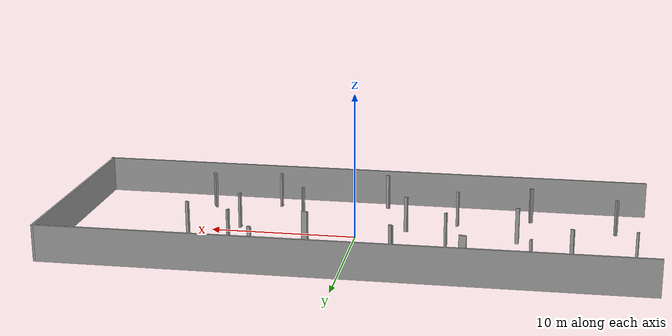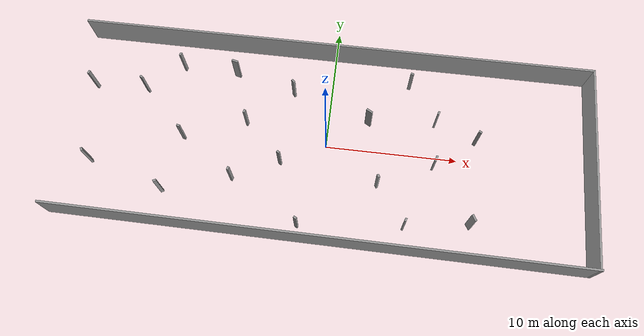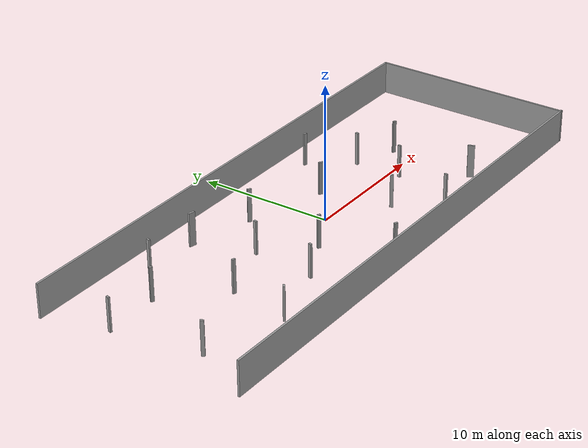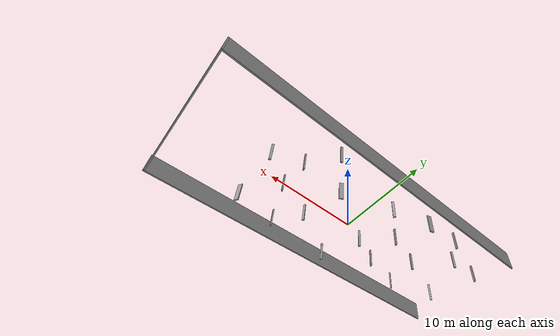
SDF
<?xml version='1.0'?>
<sdf version='1.6'>
  <model name='pole_field'>
    <link name='Wall_11'>
      <pose frame=''>-14.5401 3.1941 0 0 0 -0.523599</pose>
      <self_collide>0</self_collide>
      <enable_wind>0</enable_wind>
      <kinematic>0</kinematic>
      <visual name='Wall_11_Visual'>
        <pose frame=''>0 0 1.25 0 -0 0</pose>
        <geometry>
          <box>
            <size>0.25 0.15 2.5</size>
          </box>
        </geometry>
        <material>
          <script>
            <uri>file://media/materials/scripts/gazebo.material</uri>
            <name>Gazebo/Grey</name>
          </script>
          <ambient>1 1 1 1</ambient>
          <shader type='pixel'/>
        </material>
        <meta>
          <layer>0</layer>
        </meta>
        <transparency>0</transparency>
        <cast_shadows>1</cast_shadows>
      </visual>
      <collision name='Wall_11_Collision'>
        <laser_retro>0</laser_retro>
        <max_contacts>10</max_contacts>
        <pose frame=''>0 0 1.25 0 -0 0</pose>
        <geometry>
          <box>
            <size>0.25 0.15 2.5</size>
          </box>
        </geometry>
        <surface>
          <friction>
            <ode>
              <mu>1</mu>
              <mu2>1</mu2>
              <fdir1>0 0 0</fdir1>
              <slip1>0</slip1>
              <slip2>0</slip2>
            </ode>
            <torsional>
              <coefficient>1</coefficient>
              <patch_radius>0</patch_radius>
              <surface_radius>0</surface_radius>
              <use_patch_radius>1</use_patch_radius>
              <ode>
                <slip>0</slip>
              </ode>
            </torsional>
          </friction>
          <bounce>
            <restitution_coefficient>0</restitution_coefficient>
            <threshold>1e+06</threshold>
          </bounce>
          <contact>
            <collide_without_contact>0</collide_without_contact>
            <collide_without_contact_bitmask>1</collide_without_contact_bitmask>
            <collide_bitmask>1</collide_bitmask>
            <ode>
              <soft_cfm>0</soft_cfm>
              <soft_erp>0.2</soft_erp>
              <kp>1e+13</kp>
              <kd>1</kd>
              <max_vel>0.01</max_vel>
              <min_depth>0</min_depth>
            </ode>
            <bullet>
              <split_impulse>1</split_impulse>
              <split_impulse_penetration_threshold>-0.01</split_impulse_penetration_threshold>
              <soft_cfm>0</soft_cfm>
              <soft_erp>0.2</soft_erp>
              <kp>1e+13</kp>
              <kd>1</kd>
            </bullet>
          </contact>
        </surface>
      </collision>
    </link>
    <link name='Wall_15'>
      <pose frame=''>-17.5302 -3.12158 0 0 0 -1.0472</pose>
      <self_collide>0</self_collide>
      <enable_wind>0</enable_wind>
      <kinematic>0</kinematic>
      <visual name='Wall_15_Visual'>
        <pose frame=''>0 0 1.25 0 -0 0</pose>
        <geometry>
          <box>
            <size>0.25 0.15 2.5</size>
          </box>
        </geometry>
        <material>
          <script>
            <uri>file://media/materials/scripts/gazebo.material</uri>
            <name>Gazebo/Grey</name>
          </script>
          <ambient>1 1 1 1</ambient>
          <shader type='pixel'/>
        </material>
        <meta>
          <layer>0</layer>
        </meta>
        <transparency>0</transparency>
        <cast_shadows>1</cast_shadows>
      </visual>
      <collision name='Wall_15_Collision'>
        <laser_retro>0</laser_retro>
        <max_contacts>10</max_contacts>
        <pose frame=''>0 0 1.25 0 -0 0</pose>
        <geometry>
          <box>
            <size>0.25 0.15 2.5</size>
          </box>
        </geometry>
        <surface>
          <friction>
            <ode>
              <mu>1</mu>
              <mu2>1</mu2>
              <fdir1>0 0 0</fdir1>
              <slip1>0</slip1>
              <slip2>0</slip2>
            </ode>
            <torsional>
              <coefficient>1</coefficient>
              <patch_radius>0</patch_radius>
              <surface_radius>0</surface_radius>
              <use_patch_radius>1</use_patch_radius>
              <ode>
                <slip>0</slip>
              </ode>
            </torsional>
          </friction>
          <bounce>
            <restitution_coefficient>0</restitution_coefficient>
            <threshold>1e+06</threshold>
          </bounce>
          <contact>
            <collide_without_contact>0</collide_without_contact>
            <collide_without_contact_bitmask>1</collide_without_contact_bitmask>
            <collide_bitmask>1</collide_bitmask>
            <ode>
              <soft_cfm>0</soft_cfm>
              <soft_erp>0.2</soft_erp>
              <kp>1e+13</kp>
              <kd>1</kd>
              <max_vel>0.01</max_vel>
              <min_depth>0</min_depth>
            </ode>
            <bullet>
              <split_impulse>1</split_impulse>
              <split_impulse_penetration_threshold>-0.01</split_impulse_penetration_threshold>
              <soft_cfm>0</soft_cfm>
              <soft_erp>0.2</soft_erp>
              <kp>1e+13</kp>
              <kd>1</kd>
            </bullet>
          </contact>
        </surface>
      </collision>
    </link>
    <link name='Wall_19'>
      <pose frame=''>-10.9265 -0.473205 0 0 0 -0.261799</pose>
      <self_collide>0</self_collide>
      <enable_wind>0</enable_wind>
      <kinematic>0</kinematic>
      <visual name='Wall_19_Visual'>
        <pose frame=''>0 0 1.25 0 -0 0</pose>
        <geometry>
          <box>
            <size>0.25 0.15 2.5</size>
          </box>
        </geometry>
        <material>
          <script>
            <uri>file://media/materials/scripts/gazebo.material</uri>
            <name>Gazebo/Grey</name>
          </script>
          <ambient>1 1 1 1</ambient>
          <shader type='pixel'/>
        </material>
        <meta>
          <layer>0</layer>
        </meta>
        <transparency>0</transparency>
        <cast_shadows>1</cast_shadows>
      </visual>
      <collision name='Wall_19_Collision'>
        <laser_retro>0</laser_retro>
        <max_contacts>10</max_contacts>
        <pose frame=''>0 0 1.25 0 -0 0</pose>
        <geometry>
          <box>
            <size>0.25 0.15 2.5</size>
          </box>
        </geometry>
        <surface>
          <friction>
            <ode>
              <mu>1</mu>
              <mu2>1</mu2>
              <fdir1>0 0 0</fdir1>
              <slip1>0</slip1>
              <slip2>0</slip2>
            </ode>
            <torsional>
              <coefficient>1</coefficient>
              <patch_radius>0</patch_radius>
              <surface_radius>0</surface_radius>
              <use_patch_radius>1</use_patch_radius>
              <ode>
                <slip>0</slip>
              </ode>
            </torsional>
          </friction>
          <bounce>
            <restitution_coefficient>0</restitution_coefficient>
            <threshold>1e+06</threshold>
          </bounce>
          <contact>
            <collide_without_contact>0</collide_without_contact>
            <collide_without_contact_bitmask>1</collide_without_contact_bitmask>
            <collide_bitmask>1</collide_bitmask>
            <ode>
              <soft_cfm>0</soft_cfm>
              <soft_erp>0.2</soft_erp>
              <kp>1e+13</kp>
              <kd>1</kd>
              <max_vel>0.01</max_vel>
              <min_depth>0</min_depth>
            </ode>
            <bullet>
              <split_impulse>1</split_impulse>
              <split_impulse_penetration_threshold>-0.01</split_impulse_penetration_threshold>
              <soft_cfm>0</soft_cfm>
              <soft_erp>0.2</soft_erp>
              <kp>1e+13</kp>
              <kd>1</kd>
            </bullet>
          </contact>
        </surface>
      </collision>
    </link>
    <link name='Wall_21'>
      <pose frame=''>3.02036 2.32497 0 0 0 -0.523599</pose>
      <self_collide>0</self_collide>
      <enable_wind>0</enable_wind>
      <kinematic>0</kinematic>
      <visual name='Wall_21_Visual'>
        <pose frame=''>0 0 1.25 0 -0 0</pose>
        <geometry>
          <box>
            <size>0.5 0.15 2.5</size>
          </box>
        </geometry>
        <material>
          <script>
            <uri>file://media/materials/scripts/gazebo.material</uri>
            <name>Gazebo/Grey</name>
          </script>
          <ambient>1 1 1 1</ambient>
          <shader type='pixel'/>
        </material>
        <meta>
          <layer>0</layer>
        </meta>
        <transparency>0</transparency>
        <cast_shadows>1</cast_shadows>
      </visual>
      <collision name='Wall_21_Collision'>
        <laser_retro>0</laser_retro>
        <max_contacts>10</max_contacts>
        <pose frame=''>0 0 1.25 0 -0 0</pose>
        <geometry>
          <box>
            <size>0.5 0.15 2.5</size>
          </box>
        </geometry>
        <surface>
          <friction>
            <ode>
              <mu>1</mu>
              <mu2>1</mu2>
              <fdir1>0 0 0</fdir1>
              <slip1>0</slip1>
              <slip2>0</slip2>
            </ode>
            <torsional>
              <coefficient>1</coefficient>
              <patch_radius>0</patch_radius>
              <surface_radius>0</surface_radius>
              <use_patch_radius>1</use_patch_radius>
              <ode>
                <slip>0</slip>
              </ode>
            </torsional>
          </friction>
          <bounce>
            <restitution_coefficient>0</restitution_coefficient>
            <threshold>1e+06</threshold>
          </bounce>
          <contact>
            <collide_without_contact>0</collide_without_contact>
            <collide_without_contact_bitmask>1</collide_without_contact_bitmask>
            <collide_bitmask>1</collide_bitmask>
            <ode>
              <soft_cfm>0</soft_cfm>
              <soft_erp>0.2</soft_erp>
              <kp>1e+13</kp>
              <kd>1</kd>
              <max_vel>0.01</max_vel>
              <min_depth>0</min_depth>
            </ode>
            <bullet>
              <split_impulse>1</split_impulse>
              <split_impulse_penetration_threshold>-0.01</split_impulse_penetration_threshold>
              <soft_cfm>0</soft_cfm>
              <soft_erp>0.2</soft_erp>
              <kp>1e+13</kp>
              <kd>1</kd>
            </bullet>
          </contact>
        </surface>
      </collision>
    </link>
    <link name='Wall_24'>
      <pose frame=''>-7.69246 5.36728 0 0 0 -0.261799</pose>
      <self_collide>0</self_collide>
      <enable_wind>0</enable_wind>
      <kinematic>0</kinematic>
      <visual name='Wall_24_Visual'>
        <pose frame=''>0 0 1.25 0 -0 0</pose>
        <geometry>
          <box>
            <size>0.5 0.15 2.5</size>
          </box>
        </geometry>
        <material>
          <script>
            <uri>file://media/materials/scripts/gazebo.material</uri>
            <name>Gazebo/Grey</name>
          </script>
          <ambient>1 1 1 1</ambient>
          <shader type='pixel'/>
        </material>
        <meta>
          <layer>0</layer>
        </meta>
        <transparency>0</transparency>
        <cast_shadows>1</cast_shadows>
      </visual>
      <collision name='Wall_24_Collision'>
        <laser_retro>0</laser_retro>
        <max_contacts>10</max_contacts>
        <pose frame=''>0 0 1.25 0 -0 0</pose>
        <geometry>
          <box>
            <size>0.5 0.15 2.5</size>
          </box>
        </geometry>
        <surface>
          <friction>
            <ode>
              <mu>1</mu>
              <mu2>1</mu2>
              <fdir1>0 0 0</fdir1>
              <slip1>0</slip1>
              <slip2>0</slip2>
            </ode>
            <torsional>
              <coefficient>1</coefficient>
              <patch_radius>0</patch_radius>
              <surface_radius>0</surface_radius>
              <use_patch_radius>1</use_patch_radius>
              <ode>
                <slip>0</slip>
              </ode>
            </torsional>
          </friction>
          <bounce>
            <restitution_coefficient>0</restitution_coefficient>
            <threshold>1e+06</threshold>
          </bounce>
          <contact>
            <collide_without_contact>0</collide_without_contact>
            <collide_without_contact_bitmask>1</collide_without_contact_bitmask>
            <collide_bitmask>1</collide_bitmask>
            <ode>
              <soft_cfm>0</soft_cfm>
              <soft_erp>0.2</soft_erp>
              <kp>1e+13</kp>
              <kd>1</kd>
              <max_vel>0.01</max_vel>
              <min_depth>0</min_depth>
            </ode>
            <bullet>
              <split_impulse>1</split_impulse>
              <split_impulse_penetration_threshold>-0.01</split_impulse_penetration_threshold>
              <soft_cfm>0</soft_cfm>
              <soft_erp>0.2</soft_erp>
              <kp>1e+13</kp>
              <kd>1</kd>
            </bullet>
          </contact>
        </surface>
      </collision>
    </link>
    <link name='Wall_27'>
      <pose frame=''>-11.7257 -4.8722 0 0 0 -2.61799</pose>
      <self_collide>0</self_collide>
      <enable_wind>0</enable_wind>
      <kinematic>0</kinematic>
      <visual name='Wall_27_Visual'>
        <pose frame=''>0 0 1.25 0 -0 0</pose>
        <geometry>
          <box>
            <size>0.25 0.15 2.5</size>
          </box>
        </geometry>
        <material>
          <script>
            <uri>file://media/materials/scripts/gazebo.material</uri>
            <name>Gazebo/Grey</name>
          </script>
          <ambient>1 1 1 1</ambient>
          <shader type='pixel'/>
        </material>
        <meta>
          <layer>0</layer>
        </meta>
        <transparency>0</transparency>
        <cast_shadows>1</cast_shadows>
      </visual>
      <collision name='Wall_27_Collision'>
        <laser_retro>0</laser_retro>
        <max_contacts>10</max_contacts>
        <pose frame=''>0 0 1.25 0 -0 0</pose>
        <geometry>
          <box>
            <size>0.25 0.15 2.5</size>
          </box>
        </geometry>
        <surface>
          <friction>
            <ode>
              <mu>1</mu>
              <mu2>1</mu2>
              <fdir1>0 0 0</fdir1>
              <slip1>0</slip1>
              <slip2>0</slip2>
            </ode>
            <torsional>
              <coefficient>1</coefficient>
              <patch_radius>0</patch_radius>
              <surface_radius>0</surface_radius>
              <use_patch_radius>1</use_patch_radius>
              <ode>
                <slip>0</slip>
              </ode>
            </torsional>
          </friction>
          <bounce>
            <restitution_coefficient>0</restitution_coefficient>
            <threshold>1e+06</threshold>
          </bounce>
          <contact>
            <collide_without_contact>0</collide_without_contact>
            <collide_without_contact_bitmask>1</collide_without_contact_bitmask>
            <collide_bitmask>1</collide_bitmask>
            <ode>
              <soft_cfm>0</soft_cfm>
              <soft_erp>0.2</soft_erp>
              <kp>1e+13</kp>
              <kd>1</kd>
              <max_vel>0.01</max_vel>
              <min_depth>0</min_depth>
            </ode>
            <bullet>
              <split_impulse>1</split_impulse>
              <split_impulse_penetration_threshold>-0.01</split_impulse_penetration_threshold>
              <soft_cfm>0</soft_cfm>
              <soft_erp>0.2</soft_erp>
              <kp>1e+13</kp>
              <kd>1</kd>
            </bullet>
          </contact>
        </surface>
      </collision>
    </link>
    <link name='Wall_29'>
      <pose frame=''>-3.28447 -1.7019 0 0 0 -0.523599</pose>
      <self_collide>0</self_collide>
      <enable_wind>0</enable_wind>
      <kinematic>0</kinematic>
      <visual name='Wall_29_Visual'>
        <pose frame=''>0 0 1.25 0 -0 0</pose>
        <geometry>
          <box>
            <size>0.25 0.15 2.5</size>
          </box>
        </geometry>
        <material>
          <script>
            <uri>file://media/materials/scripts/gazebo.material</uri>
            <name>Gazebo/Grey</name>
          </script>
          <ambient>1 1 1 1</ambient>
          <shader type='pixel'/>
        </material>
        <meta>
          <layer>0</layer>
        </meta>
        <transparency>0</transparency>
        <cast_shadows>1</cast_shadows>
      </visual>
      <collision name='Wall_29_Collision'>
        <laser_retro>0</laser_retro>
        <max_contacts>10</max_contacts>
        <pose frame=''>0 0 1.25 0 -0 0</pose>
        <geometry>
          <box>
            <size>0.25 0.15 2.5</size>
          </box>
        </geometry>
        <surface>
          <friction>
            <ode>
              <mu>1</mu>
              <mu2>1</mu2>
              <fdir1>0 0 0</fdir1>
              <slip1>0</slip1>
              <slip2>0</slip2>
            </ode>
            <torsional>
              <coefficient>1</coefficient>
              <patch_radius>0</patch_radius>
              <surface_radius>0</surface_radius>
              <use_patch_radius>1</use_patch_radius>
              <ode>
                <slip>0</slip>
              </ode>
            </torsional>
          </friction>
          <bounce>
            <restitution_coefficient>0</restitution_coefficient>
            <threshold>1e+06</threshold>
          </bounce>
          <contact>
            <collide_without_contact>0</collide_without_contact>
            <collide_without_contact_bitmask>1</collide_without_contact_bitmask>
            <collide_bitmask>1</collide_bitmask>
            <ode>
              <soft_cfm>0</soft_cfm>
              <soft_erp>0.2</soft_erp>
              <kp>1e+13</kp>
              <kd>1</kd>
              <max_vel>0.01</max_vel>
              <min_depth>0</min_depth>
            </ode>
            <bullet>
              <split_impulse>1</split_impulse>
              <split_impulse_penetration_threshold>-0.01</split_impulse_penetration_threshold>
              <soft_cfm>0</soft_cfm>
              <soft_erp>0.2</soft_erp>
              <kp>1e+13</kp>
              <kd>1</kd>
            </bullet>
          </contact>
        </surface>
      </collision>
    </link>
    <link name='Wall_31'>
      <pose frame=''>4.10195 -2.69665 0 0 0 -1.0472</pose>
      <self_collide>0</self_collide>
      <enable_wind>0</enable_wind>
      <kinematic>0</kinematic>
      <visual name='Wall_31_Visual'>
        <pose frame=''>0 0 1.25 0 -0 0</pose>
        <geometry>
          <box>
            <size>0.25 0.15 2.5</size>
          </box>
        </geometry>
        <material>
          <script>
            <uri>file://media/materials/scripts/gazebo.material</uri>
            <name>Gazebo/Grey</name>
          </script>
          <ambient>1 1 1 1</ambient>
          <shader type='pixel'/>
        </material>
        <meta>
          <layer>0</layer>
        </meta>
        <transparency>0</transparency>
        <cast_shadows>1</cast_shadows>
      </visual>
      <collision name='Wall_31_Collision'>
        <laser_retro>0</laser_retro>
        <max_contacts>10</max_contacts>
        <pose frame=''>0 0 1.25 0 -0 0</pose>
        <geometry>
          <box>
            <size>0.25 0.15 2.5</size>
          </box>
        </geometry>
        <surface>
          <friction>
            <ode>
              <mu>1</mu>
              <mu2>1</mu2>
              <fdir1>0 0 0</fdir1>
              <slip1>0</slip1>
              <slip2>0</slip2>
            </ode>
            <torsional>
              <coefficient>1</coefficient>
              <patch_radius>0</patch_radius>
              <surface_radius>0</surface_radius>
              <use_patch_radius>1</use_patch_radius>
              <ode>
                <slip>0</slip>
              </ode>
            </torsional>
          </friction>
          <bounce>
            <restitution_coefficient>0</restitution_coefficient>
            <threshold>1e+06</threshold>
          </bounce>
          <contact>
            <collide_without_contact>0</collide_without_contact>
            <collide_without_contact_bitmask>1</collide_without_contact_bitmask>
            <collide_bitmask>1</collide_bitmask>
            <ode>
              <soft_cfm>0</soft_cfm>
              <soft_erp>0.2</soft_erp>
              <kp>1e+13</kp>
              <kd>1</kd>
              <max_vel>0.01</max_vel>
              <min_depth>0</min_depth>
            </ode>
            <bullet>
              <split_impulse>1</split_impulse>
              <split_impulse_penetration_threshold>-0.01</split_impulse_penetration_threshold>
              <soft_cfm>0</soft_cfm>
              <soft_erp>0.2</soft_erp>
              <kp>1e+13</kp>
              <kd>1</kd>
            </bullet>
          </contact>
        </surface>
      </collision>
    </link>
    <link name='Wall_33'>
      <pose frame=''>-1.41295 -6.4214 0 0 0 -0.523599</pose>
      <self_collide>0</self_collide>
      <enable_wind>0</enable_wind>
      <kinematic>0</kinematic>
      <visual name='Wall_33_Visual'>
        <pose frame=''>0 0 1.25 0 -0 0</pose>
        <geometry>
          <box>
            <size>0.25 0.15 2.5</size>
          </box>
        </geometry>
        <material>
          <script>
            <uri>file://media/materials/scripts/gazebo.material</uri>
            <name>Gazebo/Grey</name>
          </script>
          <ambient>1 1 1 1</ambient>
          <shader type='pixel'/>
        </material>
        <meta>
          <layer>0</layer>
        </meta>
        <transparency>0</transparency>
        <cast_shadows>1</cast_shadows>
      </visual>
      <collision name='Wall_33_Collision'>
        <laser_retro>0</laser_retro>
        <max_contacts>10</max_contacts>
        <pose frame=''>0 0 1.25 0 -0 0</pose>
        <geometry>
          <box>
            <size>0.25 0.15 2.5</size>
          </box>
        </geometry>
        <surface>
          <friction>
            <ode>
              <mu>1</mu>
              <mu2>1</mu2>
              <fdir1>0 0 0</fdir1>
              <slip1>0</slip1>
              <slip2>0</slip2>
            </ode>
            <torsional>
              <coefficient>1</coefficient>
              <patch_radius>0</patch_radius>
              <surface_radius>0</surface_radius>
              <use_patch_radius>1</use_patch_radius>
              <ode>
                <slip>0</slip>
              </ode>
            </torsional>
          </friction>
          <bounce>
            <restitution_coefficient>0</restitution_coefficient>
            <threshold>1e+06</threshold>
          </bounce>
          <contact>
            <collide_without_contact>0</collide_without_contact>
            <collide_without_contact_bitmask>1</collide_without_contact_bitmask>
            <collide_bitmask>1</collide_bitmask>
            <ode>
              <soft_cfm>0</soft_cfm>
              <soft_erp>0.2</soft_erp>
              <kp>1e+13</kp>
              <kd>1</kd>
              <max_vel>0.01</max_vel>
              <min_depth>0</min_depth>
            </ode>
            <bullet>
              <split_impulse>1</split_impulse>
              <split_impulse_penetration_threshold>-0.01</split_impulse_penetration_threshold>
              <soft_cfm>0</soft_cfm>
              <soft_erp>0.2</soft_erp>
              <kp>1e+13</kp>
              <kd>1</kd>
            </bullet>
          </contact>
        </surface>
      </collision>
    </link>
    <link name='Wall_35'>
      <pose frame=''>5.99677 5.79626 0 0 0 -0.261799</pose>
      <self_collide>0</self_collide>
      <enable_wind>0</enable_wind>
      <kinematic>0</kinematic>
      <visual name='Wall_35_Visual'>
        <pose frame=''>0 0 1.25 0 -0 0</pose>
        <geometry>
          <box>
            <size>0.25 0.15 2.5</size>
          </box>
        </geometry>
        <material>
          <script>
            <uri>file://media/materials/scripts/gazebo.material</uri>
            <name>Gazebo/Grey</name>
          </script>
          <ambient>1 1 1 1</ambient>
          <shader type='pixel'/>
        </material>
        <meta>
          <layer>0</layer>
        </meta>
        <transparency>0</transparency>
        <cast_shadows>1</cast_shadows>
      </visual>
      <collision name='Wall_35_Collision'>
        <laser_retro>0</laser_retro>
        <max_contacts>10</max_contacts>
        <pose frame=''>0 0 1.25 0 -0 0</pose>
        <geometry>
          <box>
            <size>0.25 0.15 2.5</size>
          </box>
        </geometry>
        <surface>
          <friction>
            <ode>
              <mu>1</mu>
              <mu2>1</mu2>
              <fdir1>0 0 0</fdir1>
              <slip1>0</slip1>
              <slip2>0</slip2>
            </ode>
            <torsional>
              <coefficient>1</coefficient>
              <patch_radius>0</patch_radius>
              <surface_radius>0</surface_radius>
              <use_patch_radius>1</use_patch_radius>
              <ode>
                <slip>0</slip>
              </ode>
            </torsional>
          </friction>
          <bounce>
            <restitution_coefficient>0</restitution_coefficient>
            <threshold>1e+06</threshold>
          </bounce>
          <contact>
            <collide_without_contact>0</collide_without_contact>
            <collide_without_contact_bitmask>1</collide_without_contact_bitmask>
            <collide_bitmask>1</collide_bitmask>
            <ode>
              <soft_cfm>0</soft_cfm>
              <soft_erp>0.2</soft_erp>
              <kp>1e+13</kp>
              <kd>1</kd>
              <max_vel>0.01</max_vel>
              <min_depth>0</min_depth>
            </ode>
            <bullet>
              <split_impulse>1</split_impulse>
              <split_impulse_penetration_threshold>-0.01</split_impulse_penetration_threshold>
              <soft_cfm>0</soft_cfm>
              <soft_erp>0.2</soft_erp>
              <kp>1e+13</kp>
              <kd>1</kd>
            </bullet>
          </contact>
        </surface>
      </collision>
    </link>
    <link name='Wall_37'>
      <pose frame=''>11.2809 1.55293 0 0 0 -0.523599</pose>
      <self_collide>0</self_collide>
      <enable_wind>0</enable_wind>
      <kinematic>0</kinematic>
      <visual name='Wall_37_Visual'>
        <pose frame=''>0 0 1.25 0 -0 0</pose>
        <geometry>
          <box>
            <size>0.25 0.15 2.5</size>
          </box>
        </geometry>
        <material>
          <script>
            <uri>file://media/materials/scripts/gazebo.material</uri>
            <name>Gazebo/Grey</name>
          </script>
          <ambient>1 1 1 1</ambient>
          <shader type='pixel'/>
        </material>
        <meta>
          <layer>0</layer>
        </meta>
        <transparency>0</transparency>
        <cast_shadows>1</cast_shadows>
      </visual>
      <collision name='Wall_37_Collision'>
        <laser_retro>0</laser_retro>
        <max_contacts>10</max_contacts>
        <pose frame=''>0 0 1.25 0 -0 0</pose>
        <geometry>
          <box>
            <size>0.25 0.15 2.5</size>
          </box>
        </geometry>
        <surface>
          <friction>
            <ode>
              <mu>1</mu>
              <mu2>1</mu2>
              <fdir1>0 0 0</fdir1>
              <slip1>0</slip1>
              <slip2>0</slip2>
            </ode>
            <torsional>
              <coefficient>1</coefficient>
              <patch_radius>0</patch_radius>
              <surface_radius>0</surface_radius>
              <use_patch_radius>1</use_patch_radius>
              <ode>
                <slip>0</slip>
              </ode>
            </torsional>
          </friction>
          <bounce>
            <restitution_coefficient>0</restitution_coefficient>
            <threshold>1e+06</threshold>
          </bounce>
          <contact>
            <collide_without_contact>0</collide_without_contact>
            <collide_without_contact_bitmask>1</collide_without_contact_bitmask>
            <collide_bitmask>1</collide_bitmask>
            <ode>
              <soft_cfm>0</soft_cfm>
              <soft_erp>0.2</soft_erp>
              <kp>1e+13</kp>
              <kd>1</kd>
              <max_vel>0.01</max_vel>
              <min_depth>0</min_depth>
            </ode>
            <bullet>
              <split_impulse>1</split_impulse>
              <split_impulse_penetration_threshold>-0.01</split_impulse_penetration_threshold>
              <soft_cfm>0</soft_cfm>
              <soft_erp>0.2</soft_erp>
              <kp>1e+13</kp>
              <kd>1</kd>
            </bullet>
          </contact>
        </surface>
      </collision>
    </link>
    <link name='Wall_39'>
      <pose frame=''>10.9996 -5.00191 0 0 0 -1.0472</pose>
      <self_collide>0</self_collide>
      <enable_wind>0</enable_wind>
      <kinematic>0</kinematic>
      <visual name='Wall_39_Visual'>
        <pose frame=''>0 0 1.25 0 -0 0</pose>
        <geometry>
          <box>
            <size>0.5 0.15 2.5</size>
          </box>
        </geometry>
        <material>
          <script>
            <uri>file://media/materials/scripts/gazebo.material</uri>
            <name>Gazebo/Grey</name>
          </script>
          <ambient>1 1 1 1</ambient>
          <shader type='pixel'/>
        </material>
        <meta>
          <layer>0</layer>
        </meta>
        <transparency>0</transparency>
        <cast_shadows>1</cast_shadows>
      </visual>
      <collision name='Wall_39_Collision'>
        <laser_retro>0</laser_retro>
        <max_contacts>10</max_contacts>
        <pose frame=''>0 0 1.25 0 -0 0</pose>
        <geometry>
          <box>
            <size>0.5 0.15 2.5</size>
          </box>
        </geometry>
        <surface>
          <friction>
            <ode>
              <mu>1</mu>
              <mu2>1</mu2>
              <fdir1>0 0 0</fdir1>
              <slip1>0</slip1>
              <slip2>0</slip2>
            </ode>
            <torsional>
              <coefficient>1</coefficient>
              <patch_radius>0</patch_radius>
              <surface_radius>0</surface_radius>
              <use_patch_radius>1</use_patch_radius>
              <ode>
                <slip>0</slip>
              </ode>
            </torsional>
          </friction>
          <bounce>
            <restitution_coefficient>0</restitution_coefficient>
            <threshold>1e+06</threshold>
          </bounce>
          <contact>
            <collide_without_contact>0</collide_without_contact>
            <collide_without_contact_bitmask>1</collide_without_contact_bitmask>
            <collide_bitmask>1</collide_bitmask>
            <ode>
              <soft_cfm>0</soft_cfm>
              <soft_erp>0.2</soft_erp>
              <kp>1e+13</kp>
              <kd>1</kd>
              <max_vel>0.01</max_vel>
              <min_depth>0</min_depth>
            </ode>
            <bullet>
              <split_impulse>1</split_impulse>
              <split_impulse_penetration_threshold>-0.01</split_impulse_penetration_threshold>
              <soft_cfm>0</soft_cfm>
              <soft_erp>0.2</soft_erp>
              <kp>1e+13</kp>
              <kd>1</kd>
            </bullet>
          </contact>
        </surface>
      </collision>
    </link>
    <link name='Wall_41'>
      <pose frame=''>-2.97395 4.15345 0 0 -0 2.35619</pose>
      <self_collide>0</self_collide>
      <enable_wind>0</enable_wind>
      <kinematic>0</kinematic>
      <visual name='Wall_41_Visual'>
        <pose frame=''>0 0 1.25 0 -0 0</pose>
        <geometry>
          <box>
            <size>0.3 0.15 2.5</size>
          </box>
        </geometry>
        <material>
          <script>
            <uri>file://media/materials/scripts/gazebo.material</uri>
            <name>Gazebo/Grey</name>
          </script>
          <ambient>1 1 1 1</ambient>
          <shader type='pixel'/>
        </material>
        <meta>
          <layer>0</layer>
        </meta>
        <transparency>0</transparency>
        <cast_shadows>1</cast_shadows>
      </visual>
      <collision name='Wall_41_Collision'>
        <laser_retro>0</laser_retro>
        <max_contacts>10</max_contacts>
        <pose frame=''>0 0 1.25 0 -0 0</pose>
        <geometry>
          <box>
            <size>0.3 0.15 2.5</size>
          </box>
        </geometry>
        <surface>
          <friction>
            <ode>
              <mu>1</mu>
              <mu2>1</mu2>
              <fdir1>0 0 0</fdir1>
              <slip1>0</slip1>
              <slip2>0</slip2>
            </ode>
            <torsional>
              <coefficient>1</coefficient>
              <patch_radius>0</patch_radius>
              <surface_radius>0</surface_radius>
              <use_patch_radius>1</use_patch_radius>
              <ode>
                <slip>0</slip>
              </ode>
            </torsional>
          </friction>
          <bounce>
            <restitution_coefficient>0</restitution_coefficient>
            <threshold>1e+06</threshold>
          </bounce>
          <contact>
            <collide_without_contact>0</collide_without_contact>
            <collide_without_contact_bitmask>1</collide_without_contact_bitmask>
            <collide_bitmask>1</collide_bitmask>
            <ode>
              <soft_cfm>0</soft_cfm>
              <soft_erp>0.2</soft_erp>
              <kp>1e+13</kp>
              <kd>1</kd>
              <max_vel>0.01</max_vel>
              <min_depth>0</min_depth>
            </ode>
            <bullet>
              <split_impulse>1</split_impulse>
              <split_impulse_penetration_threshold>-0.01</split_impulse_penetration_threshold>
              <soft_cfm>0</soft_cfm>
              <soft_erp>0.2</soft_erp>
              <kp>1e+13</kp>
              <kd>1</kd>
            </bullet>
          </contact>
        </surface>
      </collision>
    </link>
    <link name='Wall_5'>
      <pose frame=''>-0.041279 7.65758 0 0 -0 0</pose>
      <self_collide>0</self_collide>
      <enable_wind>0</enable_wind>
      <kinematic>0</kinematic>
      <visual name='Wall_5_Visual'>
        <pose frame=''>0 0 1.25 0 -0 0</pose>
        <geometry>
          <box>
            <size>39.75 0.15 2.5</size>
          </box>
        </geometry>
        <material>
          <script>
            <uri>file://media/materials/scripts/gazebo.material</uri>
            <name>Gazebo/Grey</name>
          </script>
          <ambient>1 1 1 1</ambient>
          <shader type='pixel'/>
        </material>
        <meta>
          <layer>0</layer>
        </meta>
        <transparency>0</transparency>
        <cast_shadows>1</cast_shadows>
      </visual>
      <collision name='Wall_5_Collision'>
        <laser_retro>0</laser_retro>
        <max_contacts>10</max_contacts>
        <pose frame=''>0 0 1.25 0 -0 0</pose>
        <geometry>
          <box>
            <size>39.75 0.15 2.5</size>
          </box>
        </geometry>
        <surface>
          <friction>
            <ode>
              <mu>1</mu>
              <mu2>1</mu2>
              <fdir1>0 0 0</fdir1>
              <slip1>0</slip1>
              <slip2>0</slip2>
            </ode>
            <torsional>
              <coefficient>1</coefficient>
              <patch_radius>0</patch_radius>
              <surface_radius>0</surface_radius>
              <use_patch_radius>1</use_patch_radius>
              <ode>
                <slip>0</slip>
              </ode>
            </torsional>
          </friction>
          <bounce>
            <restitution_coefficient>0</restitution_coefficient>
            <threshold>1e+06</threshold>
          </bounce>
          <contact>
            <collide_without_contact>0</collide_without_contact>
            <collide_without_contact_bitmask>1</collide_without_contact_bitmask>
            <collide_bitmask>1</collide_bitmask>
            <ode>
              <soft_cfm>0</soft_cfm>
              <soft_erp>0.2</soft_erp>
              <kp>1e+13</kp>
              <kd>1</kd>
              <max_vel>0.01</max_vel>
              <min_depth>0</min_depth>
            </ode>
            <bullet>
              <split_impulse>1</split_impulse>
              <split_impulse_penetration_threshold>-0.01</split_impulse_penetration_threshold>
              <soft_cfm>0</soft_cfm>
              <soft_erp>0.2</soft_erp>
              <kp>1e+13</kp>
              <kd>1</kd>
            </bullet>
          </contact>
        </surface>
      </collision>
    </link>
    <link name='Wall_6'>
      <pose frame=''>19.718 0 0 0 0 -1.58673</pose>
      <self_collide>0</self_collide>
      <enable_wind>0</enable_wind>
      <kinematic>0</kinematic>
      <visual name='Wall_6_Visual'>
        <pose frame=''>0 0 1.25 0 -0 0</pose>
        <geometry>
          <box>
            <size>15.4671 0.15 2.5</size>
          </box>
        </geometry>
        <material>
          <script>
            <uri>file://media/materials/scripts/gazebo.material</uri>
            <name>Gazebo/Grey</name>
          </script>
          <ambient>1 1 1 1</ambient>
          <shader type='pixel'/>
        </material>
        <meta>
          <layer>0</layer>
        </meta>
        <transparency>0</transparency>
        <cast_shadows>1</cast_shadows>
      </visual>
      <collision name='Wall_6_Collision'>
        <laser_retro>0</laser_retro>
        <max_contacts>10</max_contacts>
        <pose frame=''>0 0 1.25 0 -0 0</pose>
        <geometry>
          <box>
            <size>15.4671 0.15 2.5</size>
          </box>
        </geometry>
        <surface>
          <friction>
            <ode>
              <mu>1</mu>
              <mu2>1</mu2>
              <fdir1>0 0 0</fdir1>
              <slip1>0</slip1>
              <slip2>0</slip2>
            </ode>
            <torsional>
              <coefficient>1</coefficient>
              <patch_radius>0</patch_radius>
              <surface_radius>0</surface_radius>
              <use_patch_radius>1</use_patch_radius>
              <ode>
                <slip>0</slip>
              </ode>
            </torsional>
          </friction>
          <bounce>
            <restitution_coefficient>0</restitution_coefficient>
            <threshold>1e+06</threshold>
          </bounce>
          <contact>
            <collide_without_contact>0</collide_without_contact>
            <collide_without_contact_bitmask>1</collide_without_contact_bitmask>
            <collide_bitmask>1</collide_bitmask>
            <ode>
              <soft_cfm>0</soft_cfm>
              <soft_erp>0.2</soft_erp>
              <kp>1e+13</kp>
              <kd>1</kd>
              <max_vel>0.01</max_vel>
              <min_depth>0</min_depth>
            </ode>
            <bullet>
              <split_impulse>1</split_impulse>
              <split_impulse_penetration_threshold>-0.01</split_impulse_penetration_threshold>
              <soft_cfm>0</soft_cfm>
              <soft_erp>0.2</soft_erp>
              <kp>1e+13</kp>
              <kd>1</kd>
            </bullet>
          </contact>
        </surface>
      </collision>
    </link>
    <link name='Wall_7'>
      <pose frame=''>0.028316 -7.49484 0 0 -0 3.13331</pose>
      <self_collide>0</self_collide>
      <enable_wind>0</enable_wind>
      <kinematic>0</kinematic>
      <visual name='Wall_7_Visual'>
        <pose frame=''>0 0 1.25 0 -0 0</pose>
        <geometry>
          <box>
            <size>39.4494 0.15 2.5</size>
          </box>
        </geometry>
        <material>
          <script>
            <uri>file://media/materials/scripts/gazebo.material</uri>
            <name>Gazebo/Grey</name>
          </script>
          <ambient>1 1 1 1</ambient>
          <shader type='pixel'/>
        </material>
        <meta>
          <layer>0</layer>
        </meta>
        <transparency>0</transparency>
        <cast_shadows>1</cast_shadows>
      </visual>
      <collision name='Wall_7_Collision'>
        <laser_retro>0</laser_retro>
        <max_contacts>10</max_contacts>
        <pose frame=''>0 0 1.25 0 -0 0</pose>
        <geometry>
          <box>
            <size>39.4494 0.15 2.5</size>
          </box>
        </geometry>
        <surface>
          <friction>
            <ode>
              <mu>1</mu>
              <mu2>1</mu2>
              <fdir1>0 0 0</fdir1>
              <slip1>0</slip1>
              <slip2>0</slip2>
            </ode>
            <torsional>
              <coefficient>1</coefficient>
              <patch_radius>0</patch_radius>
              <surface_radius>0</surface_radius>
              <use_patch_radius>1</use_patch_radius>
              <ode>
                <slip>0</slip>
              </ode>
            </torsional>
          </friction>
          <bounce>
            <restitution_coefficient>0</restitution_coefficient>
            <threshold>1e+06</threshold>
          </bounce>
          <contact>
            <collide_without_contact>0</collide_without_contact>
            <collide_without_contact_bitmask>1</collide_without_contact_bitmask>
            <collide_bitmask>1</collide_bitmask>
            <ode>
              <soft_cfm>0</soft_cfm>
              <soft_erp>0.2</soft_erp>
              <kp>1e+13</kp>
              <kd>1</kd>
              <max_vel>0.01</max_vel>
              <min_depth>0</min_depth>
            </ode>
            <bullet>
              <split_impulse>1</split_impulse>
              <split_impulse_penetration_threshold>-0.01</split_impulse_penetration_threshold>
              <soft_cfm>0</soft_cfm>
              <soft_erp>0.2</soft_erp>
              <kp>1e+13</kp>
              <kd>1</kd>
            </bullet>
          </contact>
        </surface>
      </collision>
    </link>
    <link name='Wall_9'>
      <pose frame=''>-18.6255 3.12355 0 0 0 -1.8326</pose>
      <self_collide>0</self_collide>
      <enable_wind>0</enable_wind>
      <kinematic>0</kinematic>
      <visual name='Wall_9_Visual'>
        <pose frame=''>0 0 1.25 0 -0 0</pose>
        <geometry>
          <box>
            <size>0.25 0.15 2.5</size>
          </box>
        </geometry>
        <material>
          <script>
            <uri>file://media/materials/scripts/gazebo.material</uri>
            <name>Gazebo/Grey</name>
          </script>
          <ambient>1 1 1 1</ambient>
          <shader type='pixel'/>
        </material>
        <meta>
          <layer>0</layer>
        </meta>
        <transparency>0</transparency>
        <cast_shadows>1</cast_shadows>
      </visual>
      <collision name='Wall_9_Collision'>
        <laser_retro>0</laser_retro>
        <max_contacts>10</max_contacts>
        <pose frame=''>0 0 1.25 0 -0 0</pose>
        <geometry>
          <box>
            <size>0.25 0.15 2.5</size>
          </box>
        </geometry>
        <surface>
          <friction>
            <ode>
              <mu>1</mu>
              <mu2>1</mu2>
              <fdir1>0 0 0</fdir1>
              <slip1>0</slip1>
              <slip2>0</slip2>
            </ode>
            <torsional>
              <coefficient>1</coefficient>
              <patch_radius>0</patch_radius>
              <surface_radius>0</surface_radius>
              <use_patch_radius>1</use_patch_radius>
              <ode>
                <slip>0</slip>
              </ode>
            </torsional>
          </friction>
          <bounce>
            <restitution_coefficient>0</restitution_coefficient>
            <threshold>1e+06</threshold>
          </bounce>
          <contact>
            <collide_without_contact>0</collide_without_contact>
            <collide_without_contact_bitmask>1</collide_without_contact_bitmask>
            <collide_bitmask>1</collide_bitmask>
            <ode>
              <soft_cfm>0</soft_cfm>
              <soft_erp>0.2</soft_erp>
              <kp>1e+13</kp>
              <kd>1</kd>
              <max_vel>0.01</max_vel>
              <min_depth>0</min_depth>
            </ode>
            <bullet>
              <split_impulse>1</split_impulse>
              <split_impulse_penetration_threshold>-0.01</split_impulse_penetration_threshold>
              <soft_cfm>0</soft_cfm>
              <soft_erp>0.2</soft_erp>
              <kp>1e+13</kp>
              <kd>1</kd>
            </bullet>
          </contact>
        </surface>
      </collision>
    </link>
    <link name='Wall_9_clone'>
      <pose frame=''>-6.70221 -3.35522 0 0 0 -1.8326</pose>
      <self_collide>0</self_collide>
      <enable_wind>0</enable_wind>
      <kinematic>0</kinematic>
      <visual name='Wall_9_Visual'>
        <pose frame=''>0 0 1.25 0 -0 0</pose>
        <geometry>
          <box>
            <size>0.25 0.15 2.5</size>
          </box>
        </geometry>
        <material>
          <script>
            <uri>file://media/materials/scripts/gazebo.material</uri>
            <name>Gazebo/Grey</name>
          </script>
          <ambient>1 1 1 1</ambient>
          <shader type='pixel'/>
        </material>
        <meta>
          <layer>0</layer>
        </meta>
        <transparency>0</transparency>
        <cast_shadows>1</cast_shadows>
      </visual>
      <collision name='Wall_9_Collision'>
        <laser_retro>0</laser_retro>
        <max_contacts>10</max_contacts>
        <pose frame=''>0 0 1.25 0 -0 0</pose>
        <geometry>
          <box>
            <size>0.25 0.15 2.5</size>
          </box>
        </geometry>
        <surface>
          <friction>
            <ode>
              <mu>1</mu>
              <mu2>1</mu2>
              <fdir1>0 0 0</fdir1>
              <slip1>0</slip1>
              <slip2>0</slip2>
            </ode>
            <torsional>
              <coefficient>1</coefficient>
              <patch_radius>0</patch_radius>
              <surface_radius>0</surface_radius>
              <use_patch_radius>1</use_patch_radius>
              <ode>
                <slip>0</slip>
              </ode>
            </torsional>
          </friction>
          <bounce>
            <restitution_coefficient>0</restitution_coefficient>
            <threshold>1e+06</threshold>
          </bounce>
          <contact>
            <collide_without_contact>0</collide_without_contact>
            <collide_without_contact_bitmask>1</collide_without_contact_bitmask>
            <collide_bitmask>1</collide_bitmask>
            <ode>
              <soft_cfm>0</soft_cfm>
              <soft_erp>0.2</soft_erp>
              <kp>1e+13</kp>
              <kd>1</kd>
              <max_vel>0.01</max_vel>
              <min_depth>0</min_depth>
            </ode>
            <bullet>
              <split_impulse>1</split_impulse>
              <split_impulse_penetration_threshold>-0.01</split_impulse_penetration_threshold>
              <soft_cfm>0</soft_cfm>
              <soft_erp>0.2</soft_erp>
              <kp>1e+13</kp>
              <kd>1</kd>
            </bullet>
          </contact>
        </surface>
      </collision>
    </link>
    <link name='Wall_9_clone_0'>
      <pose frame=''>-11.9656 5.47585 0 0 0 -1.8326</pose>
      <self_collide>0</self_collide>
      <enable_wind>0</enable_wind>
      <kinematic>0</kinematic>
      <visual name='Wall_9_Visual'>
        <pose frame=''>0 0 1.25 0 -0 0</pose>
        <geometry>
          <box>
            <size>0.25 0.15 2.5</size>
          </box>
        </geometry>
        <material>
          <script>
            <uri>file://media/materials/scripts/gazebo.material</uri>
            <name>Gazebo/Grey</name>
          </script>
          <ambient>1 1 1 1</ambient>
          <shader type='pixel'/>
        </material>
        <meta>
          <layer>0</layer>
        </meta>
        <transparency>0</transparency>
        <cast_shadows>1</cast_shadows>
      </visual>
      <collision name='Wall_9_Collision'>
        <laser_retro>0</laser_retro>
        <max_contacts>10</max_contacts>
        <pose frame=''>0 0 1.25 0 -0 0</pose>
        <geometry>
          <box>
            <size>0.25 0.15 2.5</size>
          </box>
        </geometry>
        <surface>
          <friction>
            <ode>
              <mu>1</mu>
              <mu2>1</mu2>
              <fdir1>0 0 0</fdir1>
              <slip1>0</slip1>
              <slip2>0</slip2>
            </ode>
            <torsional>
              <coefficient>1</coefficient>
              <patch_radius>0</patch_radius>
              <surface_radius>0</surface_radius>
              <use_patch_radius>1</use_patch_radius>
              <ode>
                <slip>0</slip>
              </ode>
            </torsional>
          </friction>
          <bounce>
            <restitution_coefficient>0</restitution_coefficient>
            <threshold>1e+06</threshold>
          </bounce>
          <contact>
            <collide_without_contact>0</collide_without_contact>
            <collide_without_contact_bitmask>1</collide_without_contact_bitmask>
            <collide_bitmask>1</collide_bitmask>
            <ode>
              <soft_cfm>0</soft_cfm>
              <soft_erp>0.2</soft_erp>
              <kp>1e+13</kp>
              <kd>1</kd>
              <max_vel>0.01</max_vel>
              <min_depth>0</min_depth>
            </ode>
            <bullet>
              <split_impulse>1</split_impulse>
              <split_impulse_penetration_threshold>-0.01</split_impulse_penetration_threshold>
              <soft_cfm>0</soft_cfm>
              <soft_erp>0.2</soft_erp>
              <kp>1e+13</kp>
              <kd>1</kd>
            </bullet>
          </contact>
        </surface>
      </collision>
    </link>
    <link name='Wall_9_clone_1'>
      <pose frame=''>-6.26382 1.24179 0 0 0 -1.8326</pose>
      <self_collide>0</self_collide>
      <enable_wind>0</enable_wind>
      <kinematic>0</kinematic>
      <visual name='Wall_9_Visual'>
        <pose frame=''>0 0 1.25 0 -0 0</pose>
        <geometry>
          <box>
            <size>0.25 0.15 2.5</size>
          </box>
        </geometry>
        <material>
          <script>
            <uri>file://media/materials/scripts/gazebo.material</uri>
            <name>Gazebo/Grey</name>
          </script>
          <ambient>1 1 1 1</ambient>
          <shader type='pixel'/>
        </material>
        <meta>
          <layer>0</layer>
        </meta>
        <transparency>0</transparency>
        <cast_shadows>1</cast_shadows>
      </visual>
      <collision name='Wall_9_Collision'>
        <laser_retro>0</laser_retro>
        <max_contacts>10</max_contacts>
        <pose frame=''>0 0 1.25 0 -0 0</pose>
        <geometry>
          <box>
            <size>0.25 0.15 2.5</size>
          </box>
        </geometry>
        <surface>
          <friction>
            <ode>
              <mu>1</mu>
              <mu2>1</mu2>
              <fdir1>0 0 0</fdir1>
              <slip1>0</slip1>
              <slip2>0</slip2>
            </ode>
            <torsional>
              <coefficient>1</coefficient>
              <patch_radius>0</patch_radius>
              <surface_radius>0</surface_radius>
              <use_patch_radius>1</use_patch_radius>
              <ode>
                <slip>0</slip>
              </ode>
            </torsional>
          </friction>
          <bounce>
            <restitution_coefficient>0</restitution_coefficient>
            <threshold>1e+06</threshold>
          </bounce>
          <contact>
            <collide_without_contact>0</collide_without_contact>
            <collide_without_contact_bitmask>1</collide_without_contact_bitmask>
            <collide_bitmask>1</collide_bitmask>
            <ode>
              <soft_cfm>0</soft_cfm>
              <soft_erp>0.2</soft_erp>
              <kp>1e+13</kp>
              <kd>1</kd>
              <max_vel>0.01</max_vel>
              <min_depth>0</min_depth>
            </ode>
            <bullet>
              <split_impulse>1</split_impulse>
              <split_impulse_penetration_threshold>-0.01</split_impulse_penetration_threshold>
              <soft_cfm>0</soft_cfm>
              <soft_erp>0.2</soft_erp>
              <kp>1e+13</kp>
              <kd>1</kd>
            </bullet>
          </contact>
        </surface>
      </collision>
    </link>
    <link name='Wall_9_clone_2'>
      <pose frame=''>8.19235 -0.797854 0 0 0 -1.8326</pose>
      <self_collide>0</self_collide>
      <enable_wind>0</enable_wind>
      <kinematic>0</kinematic>
      <visual name='Wall_9_Visual'>
        <pose frame=''>0 0 1.25 0 -0 0</pose>
        <geometry>
          <box>
            <size>0.25 0.15 2.5</size>
          </box>
        </geometry>
        <material>
          <script>
            <uri>file://media/materials/scripts/gazebo.material</uri>
            <name>Gazebo/Grey</name>
          </script>
          <ambient>1 1 1 1</ambient>
          <shader type='pixel'/>
        </material>
        <meta>
          <layer>0</layer>
        </meta>
        <transparency>0</transparency>
        <cast_shadows>1</cast_shadows>
      </visual>
      <collision name='Wall_9_Collision'>
        <laser_retro>0</laser_retro>
        <max_contacts>10</max_contacts>
        <pose frame=''>0 0 1.25 0 -0 0</pose>
        <geometry>
          <box>
            <size>0.25 0.15 2.5</size>
          </box>
        </geometry>
        <surface>
          <friction>
            <ode>
              <mu>1</mu>
              <mu2>1</mu2>
              <fdir1>0 0 0</fdir1>
              <slip1>0</slip1>
              <slip2>0</slip2>
            </ode>
            <torsional>
              <coefficient>1</coefficient>
              <patch_radius>0</patch_radius>
              <surface_radius>0</surface_radius>
              <use_patch_radius>1</use_patch_radius>
              <ode>
                <slip>0</slip>
              </ode>
            </torsional>
          </friction>
          <bounce>
            <restitution_coefficient>0</restitution_coefficient>
            <threshold>1e+06</threshold>
          </bounce>
          <contact>
            <collide_without_contact>0</collide_without_contact>
            <collide_without_contact_bitmask>1</collide_without_contact_bitmask>
            <collide_bitmask>1</collide_bitmask>
            <ode>
              <soft_cfm>0</soft_cfm>
              <soft_erp>0.2</soft_erp>
              <kp>1e+13</kp>
              <kd>1</kd>
              <max_vel>0.01</max_vel>
              <min_depth>0</min_depth>
            </ode>
            <bullet>
              <split_impulse>1</split_impulse>
              <split_impulse_penetration_threshold>-0.01</split_impulse_penetration_threshold>
              <soft_cfm>0</soft_cfm>
              <soft_erp>0.2</soft_erp>
              <kp>1e+13</kp>
              <kd>1</kd>
            </bullet>
          </contact>
        </surface>
      </collision>
    </link>
    <link name='Wall_9_clone_3'>
      <pose frame=''>8.16064 2.73912 0 0 0 -1.8326</pose>
      <self_collide>0</self_collide>
      <enable_wind>0</enable_wind>
      <kinematic>0</kinematic>
      <visual name='Wall_9_Visual'>
        <pose frame=''>0 0 1.25 0 -0 0</pose>
        <geometry>
          <box>
            <size>0.25 0.15 2.5</size>
          </box>
        </geometry>
        <material>
          <script>
            <uri>file://media/materials/scripts/gazebo.material</uri>
            <name>Gazebo/Grey</name>
          </script>
          <ambient>1 1 1 1</ambient>
          <shader type='pixel'/>
        </material>
        <meta>
          <layer>0</layer>
        </meta>
        <transparency>0</transparency>
        <cast_shadows>1</cast_shadows>
      </visual>
      <collision name='Wall_9_Collision'>
        <laser_retro>0</laser_retro>
        <max_contacts>10</max_contacts>
        <pose frame=''>0 0 1.25 0 -0 0</pose>
        <geometry>
          <box>
            <size>0.25 0.15 2.5</size>
          </box>
        </geometry>
        <surface>
          <friction>
            <ode>
              <mu>1</mu>
              <mu2>1</mu2>
              <fdir1>0 0 0</fdir1>
              <slip1>0</slip1>
              <slip2>0</slip2>
            </ode>
            <torsional>
              <coefficient>1</coefficient>
              <patch_radius>0</patch_radius>
              <surface_radius>0</surface_radius>
              <use_patch_radius>1</use_patch_radius>
              <ode>
                <slip>0</slip>
              </ode>
            </torsional>
          </friction>
          <bounce>
            <restitution_coefficient>0</restitution_coefficient>
            <threshold>1e+06</threshold>
          </bounce>
          <contact>
            <collide_without_contact>0</collide_without_contact>
            <collide_without_contact_bitmask>1</collide_without_contact_bitmask>
            <collide_bitmask>1</collide_bitmask>
            <ode>
              <soft_cfm>0</soft_cfm>
              <soft_erp>0.2</soft_erp>
              <kp>1e+13</kp>
              <kd>1</kd>
              <max_vel>0.01</max_vel>
              <min_depth>0</min_depth>
            </ode>
            <bullet>
              <split_impulse>1</split_impulse>
              <split_impulse_penetration_threshold>-0.01</split_impulse_penetration_threshold>
              <soft_cfm>0</soft_cfm>
              <soft_erp>0.2</soft_erp>
              <kp>1e+13</kp>
              <kd>1</kd>
            </bullet>
          </contact>
        </surface>
      </collision>
    </link>
    <link name='Wall_9_clone_4'>
      <pose frame=''>6.27097 -5.68986 0 0 0 -1.8326</pose>
      <self_collide>0</self_collide>
      <enable_wind>0</enable_wind>
      <kinematic>0</kinematic>
      <visual name='Wall_9_Visual'>
        <pose frame=''>0 0 1.25 0 -0 0</pose>
        <geometry>
          <box>
            <size>0.25 0.15 2.5</size>
          </box>
        </geometry>
        <material>
          <script>
            <uri>file://media/materials/scripts/gazebo.material</uri>
            <name>Gazebo/Grey</name>
          </script>
          <ambient>1 1 1 1</ambient>
          <shader type='pixel'/>
        </material>
        <meta>
          <layer>0</layer>
        </meta>
        <transparency>0</transparency>
        <cast_shadows>1</cast_shadows>
      </visual>
      <collision name='Wall_9_Collision'>
        <laser_retro>0</laser_retro>
        <max_contacts>10</max_contacts>
        <pose frame=''>0 0 1.25 0 -0 0</pose>
        <geometry>
          <box>
            <size>0.25 0.15 2.5</size>
          </box>
        </geometry>
        <surface>
          <friction>
            <ode>
              <mu>1</mu>
              <mu2>1</mu2>
              <fdir1>0 0 0</fdir1>
              <slip1>0</slip1>
              <slip2>0</slip2>
            </ode>
            <torsional>
              <coefficient>1</coefficient>
              <patch_radius>0</patch_radius>
              <surface_radius>0</surface_radius>
              <use_patch_radius>1</use_patch_radius>
              <ode>
                <slip>0</slip>
              </ode>
            </torsional>
          </friction>
          <bounce>
            <restitution_coefficient>0</restitution_coefficient>
            <threshold>1e+06</threshold>
          </bounce>
          <contact>
            <collide_without_contact>0</collide_without_contact>
            <collide_without_contact_bitmask>1</collide_without_contact_bitmask>
            <collide_bitmask>1</collide_bitmask>
            <ode>
              <soft_cfm>0</soft_cfm>
              <soft_erp>0.2</soft_erp>
              <kp>1e+13</kp>
              <kd>1</kd>
              <max_vel>0.01</max_vel>
              <min_depth>0</min_depth>
            </ode>
            <bullet>
              <split_impulse>1</split_impulse>
              <split_impulse_penetration_threshold>-0.01</split_impulse_penetration_threshold>
              <soft_cfm>0</soft_cfm>
              <soft_erp>0.2</soft_erp>
              <kp>1e+13</kp>
              <kd>1</kd>
            </bullet>
          </contact>
        </surface>
      </collision>
    </link>
    <static>1</static>
    <allow_auto_disable>1</allow_auto_disable>
  </model>
</sdf>
